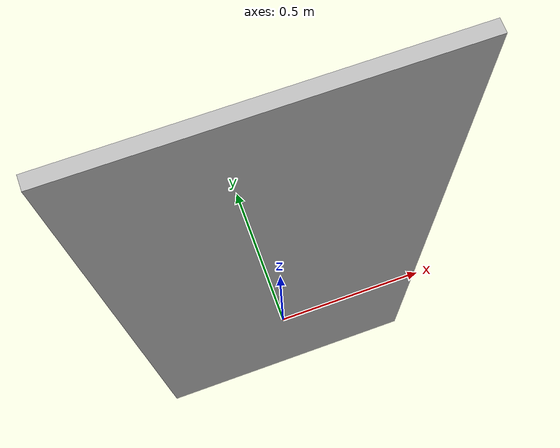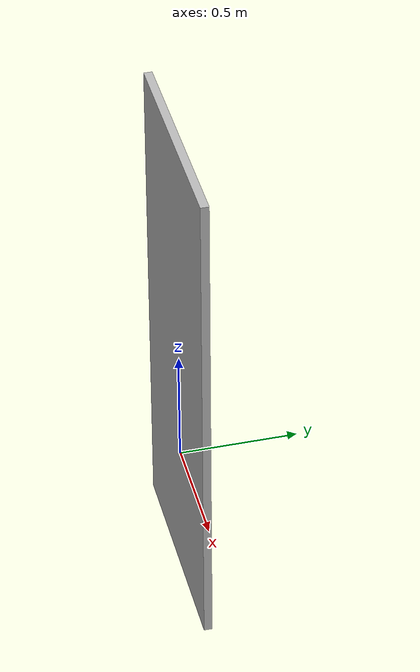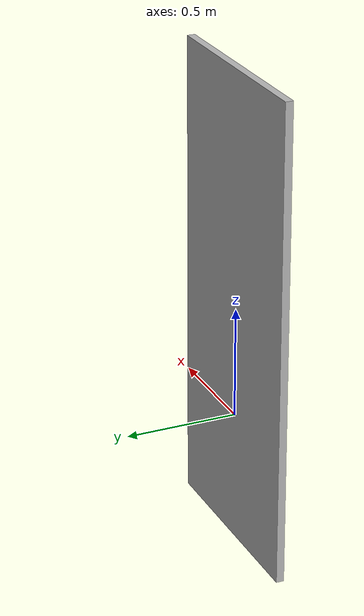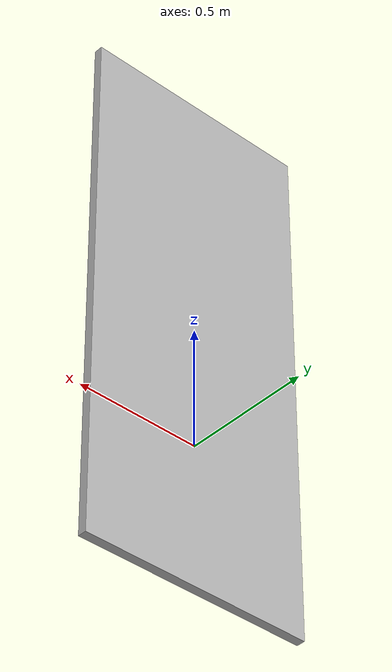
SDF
<?xml version='1.0'?>
<sdf version="1.4">
<model name="PortaInternaEsquerda">
  <pose>0 0 0.5 0 0 0</pose>
  <static>true</static>
    <link name="link">
      <collision name="collision">
        <geometry>
          <box>
            <size>2.15 3.5 0.94</size>
          </box>
        </geometry>
      </collision>
      <visual name="visual">
        <geometry>
          <box>
            <size>0.94 0.035 2.15</size>
          </box>
        </geometry>
	<material>
          <script>
            <uri>model://PortaInternaEsquerda/materials/scripts</uri>
            <uri>model://PortaInternaEsquerda/materials/textures</uri>
            <name>TexturaPortaInternaEsquerda/Image</name>
          </script>
        </material>
      </visual>
    </link>
  </model>
</sdf>
